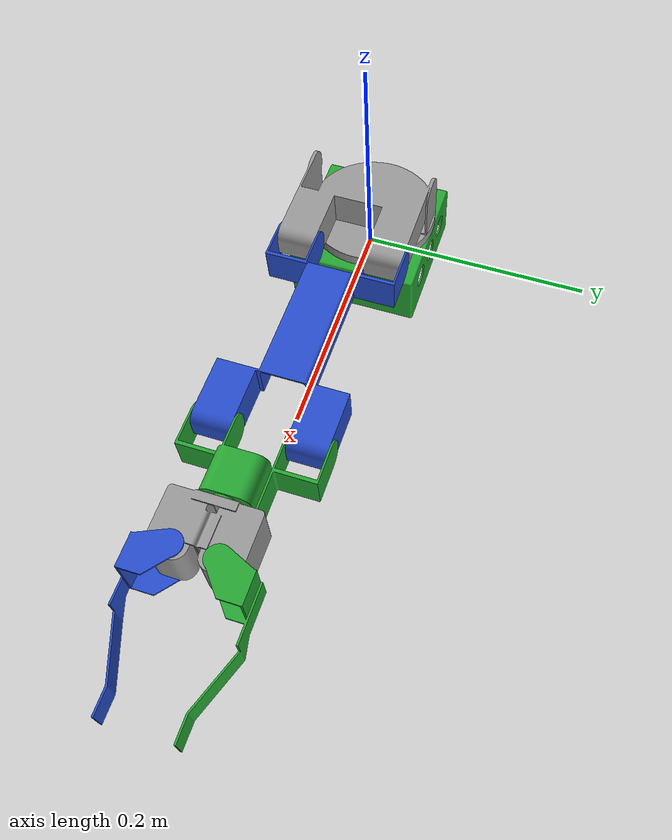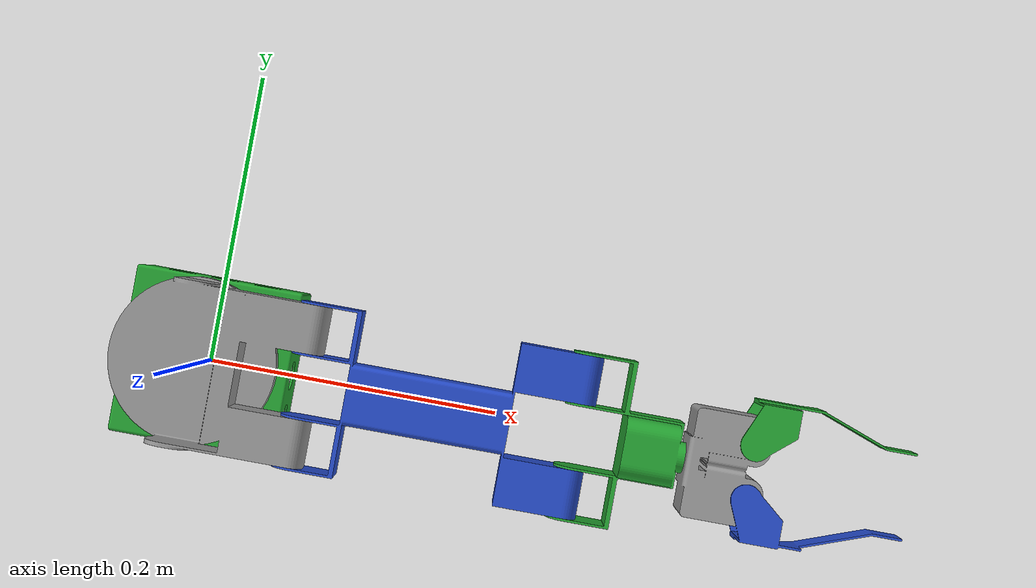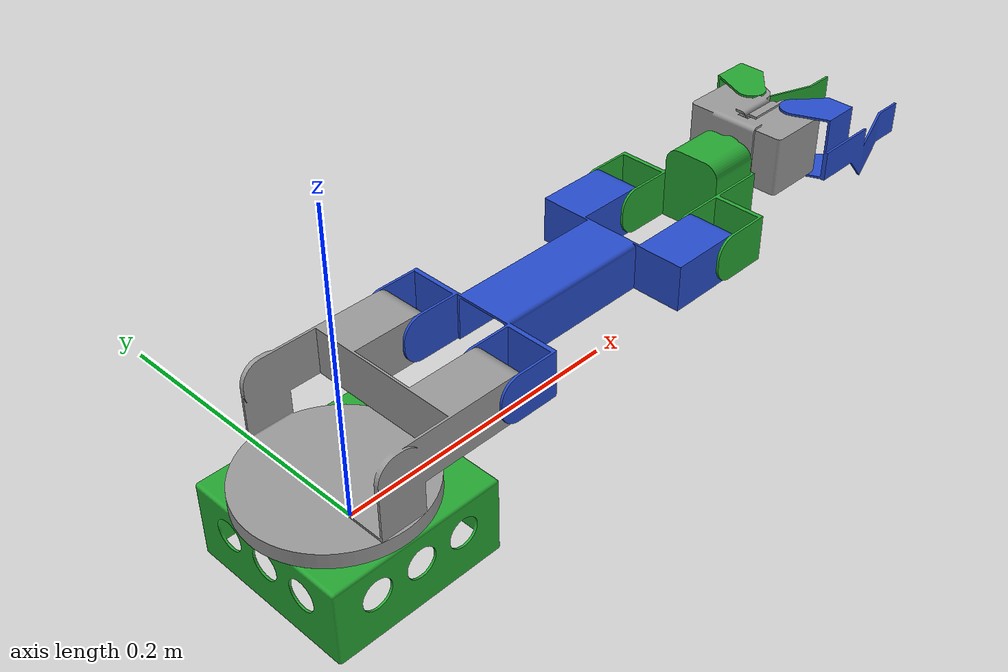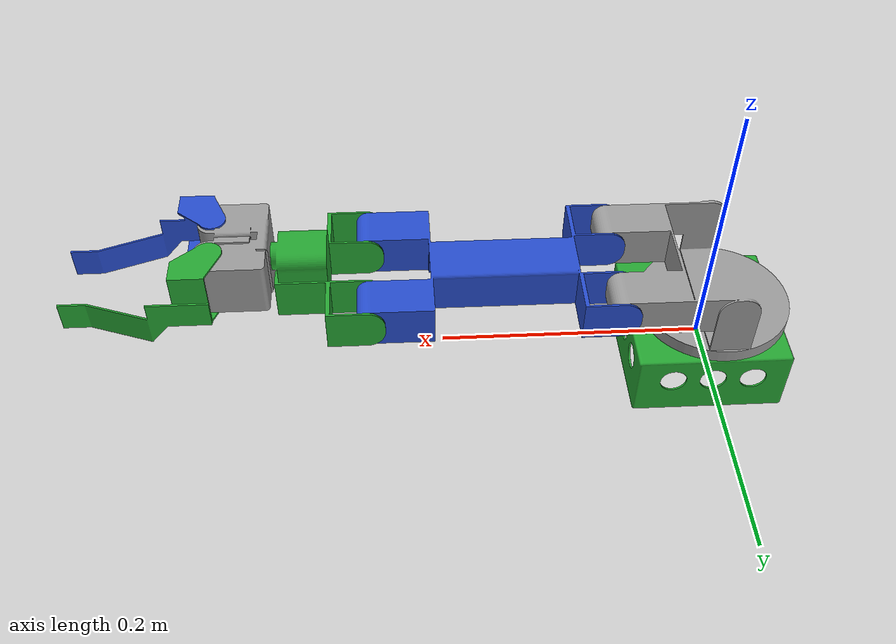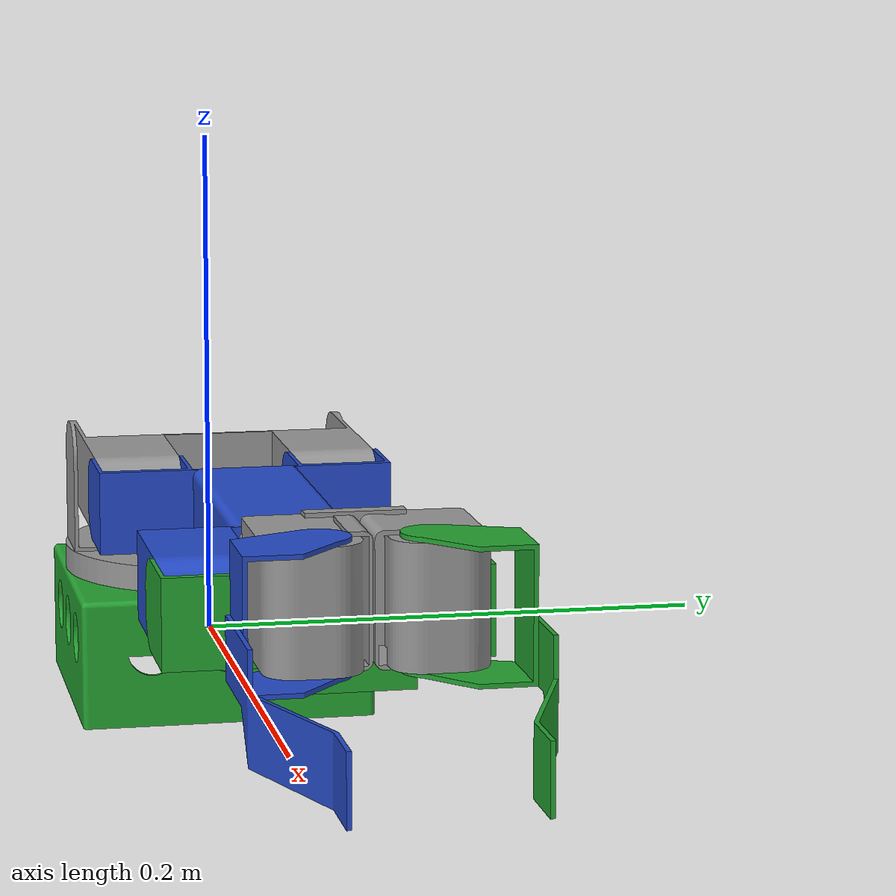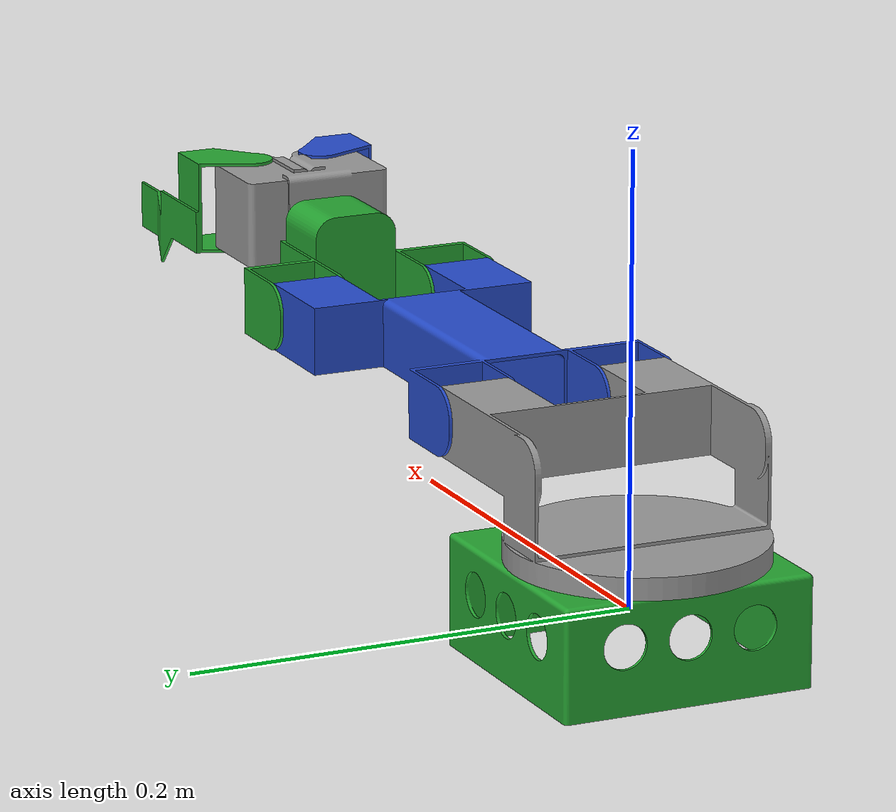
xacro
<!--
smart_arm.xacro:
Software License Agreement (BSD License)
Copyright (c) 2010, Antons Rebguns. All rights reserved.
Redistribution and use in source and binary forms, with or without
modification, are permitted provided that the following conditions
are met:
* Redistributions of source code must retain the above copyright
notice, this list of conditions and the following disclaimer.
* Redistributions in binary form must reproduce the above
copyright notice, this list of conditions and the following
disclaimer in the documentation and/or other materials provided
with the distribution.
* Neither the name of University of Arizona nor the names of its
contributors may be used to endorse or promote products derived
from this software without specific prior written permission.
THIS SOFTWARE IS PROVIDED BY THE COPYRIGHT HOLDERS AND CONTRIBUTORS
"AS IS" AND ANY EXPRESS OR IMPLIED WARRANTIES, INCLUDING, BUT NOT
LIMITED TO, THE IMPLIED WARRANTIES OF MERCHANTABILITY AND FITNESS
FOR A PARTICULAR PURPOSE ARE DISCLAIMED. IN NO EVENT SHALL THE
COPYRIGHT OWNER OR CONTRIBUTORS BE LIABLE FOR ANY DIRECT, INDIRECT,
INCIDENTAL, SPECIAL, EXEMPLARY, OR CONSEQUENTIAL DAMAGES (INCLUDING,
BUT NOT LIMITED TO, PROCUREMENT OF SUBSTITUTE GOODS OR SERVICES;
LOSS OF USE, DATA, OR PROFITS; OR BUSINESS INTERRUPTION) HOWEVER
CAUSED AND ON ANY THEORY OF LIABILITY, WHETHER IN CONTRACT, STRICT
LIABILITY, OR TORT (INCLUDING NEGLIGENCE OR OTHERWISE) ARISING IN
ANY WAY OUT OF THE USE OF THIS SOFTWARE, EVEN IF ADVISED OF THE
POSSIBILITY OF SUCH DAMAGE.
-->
<?xml version="1.0"?>

<robot name="smart_arm"  xmlns:xacro="http://www.ros.org/wiki/xacro">

  <!-- Included URDF Files -->
  <xacro:include filename="$(find smart_arm_description)/urdf/smart_arm.xacro" />

  <!-- Used for fixing robot to Gazebo 'base_link' -->
  <link name="world"/>
  <smart_arm parent="world"> <!--decimated="_decimated"-->
    <origin xyz="0 0 0" rpy="0 0 0" />
  </smart_arm>
</robot>

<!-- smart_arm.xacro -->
<robot name="smart_arm" xmlns:xacro="http://www.ros.org/wiki/xacro">

  <xacro:include filename="$(find smart_arm_description)/urdf/materials.urdf.xacro" />

  <xacro:macro name="smart_arm" params="parent decimated:='' *origin">
    <!-- ****** JOINT DEFINITIONS ****** -->

    <!-- Arm's base joint -->
    <joint name="arm_base_joint" type="fixed">
      <xacro:insert_block name="origin" />
      <parent link="${parent}"/>
      <child link="arm_base_link"/>
    </joint>

    <!-- Shoulder pan joint -->
    <joint name="shoulder_pan_joint" type="revolute" >
      <origin xyz="-0.0075 0 0.025" rpy="0 0 0" />
      <parent link="arm_base_link" />
      <child link="arm_shoulder_pan_link"/>

      <axis xyz="0 0 1"/>
      <limit  lower="-1.22" upper="1.22" effort="300" velocity="1.17" />
      <safety_controller k_position="100" k_velocity="15.0" soft_lower_limit="${-1.22+0.1}" soft_upper_limit="${1.22-0.1}" />
      <dynamics damping="50" friction="1"/>
    </joint>

    <!-- Shoulder tilt joint -->
    <joint name="shoulder_pitch_joint" type="revolute">
      <origin xyz="${0.105 - 0.01 - 0.03085/2} 0 ${0.01 + 0.05 - 0.031/2}" rpy="0 0 0" />
      <parent link="arm_shoulder_pan_link"/>
      <child link="arm_shoulder_pitch_link" />

      <axis xyz="0 -1 0"/>
      <limit  lower="-1.04719755" upper="1.972222" effort="300" velocity="1.17" />
      <safety_controller k_position="100" k_velocity="15.0" soft_lower_limit="${-1.04719755+0.1}" soft_upper_limit="${1.972222-0.1}" />
      <dynamics damping="50" friction="1"/>
    </joint>

    <!-- Elbow tilt joint -->
    <joint name="elbow_flex_joint" type="revolute">
      <origin xyz="${0.04 - 0.01 + 0.0015 + 0.105 + 0.055 - 0.01} 0 0" rpy="0 0 0" />
      <parent link="arm_shoulder_pitch_link"/>
      <child link="arm_elbow_flex_link" />

      <axis xyz="0 -1 0"/>
      <!-- From -113 to 108 degrees -->
      <limit  lower="-1.972222" upper="1.8849556" effort="300" velocity="1.17" />
      <dynamics damping="50" friction="1"/>
      <safety_controller k_position="100" k_velocity="15.0" soft_lower_limit="${-1.972222+0.1}" soft_upper_limit="${1.8849556-0.1}" />
    </joint>

    <!-- Wrist rotate joint -->
    <joint name="wrist_roll_joint" type="revolute">
      <origin xyz="${0.08 - 0.01} 0 ${0.05 - 0.0115 - 0.0155}" rpy="0 0 0" />
      <parent link="arm_elbow_flex_link"/>
      <child link="arm_wrist_roll_link" />

      <axis xyz="-1 0 0"/>
      <!-- From -150 to 150 degrees -->
      <limit  lower="-2.6179939" upper="2.6179939" effort="300" velocity="1.17" />
      <dynamics damping="50" friction="1"/>
      <safety_controller k_position="100" k_velocity="15.0" soft_lower_limit="${-2.6179939+0.1}" soft_upper_limit="${2.6179939-0.1}" />
    </joint>

    <!-- Gripper right finger joint -->
    <joint name="right_finger_joint" type="revolute">
      <origin xyz="${0.0015 + 0.05 - 0.01} ${-0.035/2} 0" rpy="0 0 0" />
      <parent link="arm_wrist_roll_link"/>
      <child link="arm_right_finger_link" />

      <axis xyz="0 0 1"/>
      <!-- From 14 to -45 degrees -->
      <limit  lower="-0.838576116" upper="0.245436912" effort="300" velocity="1.17" />
      <dynamics damping="50" friction="1"/>
      <safety_controller k_position="100" k_velocity="15.0" soft_lower_limit="${-0.838576116+0.1}" soft_upper_limit="${0.245436912-0.1}" />
    </joint>

    <!-- Gripper left finger joint -->
    <joint name="left_finger_joint" type="revolute">
      <origin xyz="${0.0015 + 0.05 - 0.01} ${0.035/2} 0" rpy="0 0 0" />
      <parent link="arm_wrist_roll_link"/>
      <child link="arm_left_finger_link" />

      <axis xyz="0 0 1"/>
      <!-- From -14 to 45 degrees -->
      <limit  lower="-0.240323643" upper="0.843689385" effort="300" velocity="1.17" />
      <dynamics damping="50" friction="1"/>
      <safety_controller k_position="100" k_velocity="15.0" soft_lower_limit="${-0.240323643+0.1}" soft_upper_limit="${0.843689385-0.1}" />
    </joint>

    <!-- ****** LINK DEFINITIONS ****** -->

    <link name="arm_base_link">
      <inertial>
        <mass value="0.125" />
        <origin xyz="0 0 0.00893364" rpy="0 0 0" />
        <inertia ixx="1.0" ixy="0.0" ixz="0.0"
             iyy="1.0" iyz="0.0"
             izz="1.0" />
      </inertial>

      <visual>
        <origin xyz="0.0 0.0 0.0" rpy="0 0 0" />
        <geometry>
          <mesh filename="package://smart_arm_description/meshes/collada/arm_base${decimated}.dae"/>
        </geometry>
        <material name="Green" />
      </visual>

      <collision>
        <origin xyz="0.0 0.0 0.0" rpy="0 0 0" />
        <geometry>
          <mesh filename="package://smart_arm_description/meshes/collada/arm_base${decimated}.dae"/>
        </geometry>
      </collision>
    </link>

    <link name="arm_shoulder_pan_link">
      <inertial>
        <mass value="0.405" />
        <origin xyz="0.02988871 0 0.02056699" rpy="0 0 0" />
        <inertia ixx="1.0" ixy="0.0" ixz="0.0"
             iyy="1.0" iyz="0.0"
             izz="1.0" />
      </inertial>

      <visual>
        <origin xyz="0.0 0.0 0.005" rpy="0 0 0" />
        <geometry>
          <mesh filename="package://smart_arm_description/meshes/collada/arm_shoulder_pan${decimated}.dae"/>
        </geometry>
        <material name="Grey" />
      </visual>

      <collision>
        <origin xyz="0.0 0.0 0.0" rpy="0 0 0" />
        <geometry>
          <mesh filename="package://smart_arm_description/meshes/collada/arm_shoulder_pan${decimated}.dae"/>
        </geometry>
      </collision>
    </link>

    <link name="arm_shoulder_pitch_link">
      <inertial>
        <mass value="0.18" />
        <origin xyz="0.13999458 0 0.00064711" rpy="0 0 0" />
        <inertia ixx="1.0" ixy="0.0" ixz="0.0"
             iyy="1.0" iyz="0.0"
             izz="1.0" />
      </inertial>

      <visual>
        <origin xyz="0.0 0.0 0.0" rpy="0 0 0" />
        <geometry>
          <mesh filename="package://smart_arm_description/meshes/collada/arm_shoulder_pitch${decimated}.dae"/>
        </geometry>
        <material name="Blue" />
      </visual>

      <collision>
        <origin xyz="0.0 0.0 0.0" rpy="0 0 0" />
        <geometry>
          <mesh filename="package://smart_arm_description/meshes/collada/arm_shoulder_pitch${decimated}.dae"/>
        </geometry>
      </collision>
    </link>

    <link name="arm_elbow_flex_link">
      <inertial>
        <mass value="0.12" />
        <origin xyz="0.04463361 0 0.00720194" rpy="0 0 0" />
        <inertia ixx="1.0" ixy="0.0" ixz="0.0"
             iyy="1.0" iyz="0.0"
             izz="1.0" />
      </inertial>

      <visual>
        <origin xyz="0.0 0.0 0.0" rpy="0 0 0" />
        <geometry>
          <mesh filename="package://smart_arm_description/meshes/collada/arm_elbow_flex${decimated}.dae"/>
        </geometry>
        <material name="Green" />
      </visual>

      <collision>
        <origin xyz="0.0 0.0 0.0" rpy="0 0 0" />
        <geometry>
          <mesh filename="package://smart_arm_description/meshes/collada/arm_elbow_flex${decimated}.dae"/>
        </geometry>
      </collision>
    </link>

    <link name="arm_wrist_roll_link">
      <inertial>
        <mass value="0.13" />
        <origin xyz="0.02539960 0 0" rpy="0 0 0" />
        <inertia ixx="1.0" ixy="0.0" ixz="0.0"
             iyy="1.0" iyz="0.0"
             izz="1.0" />
      </inertial>

      <visual>
        <origin xyz="0.0 0.0 0.0" rpy="0 0 0" />
        <geometry>
          <mesh filename="package://smart_arm_description/meshes/collada/arm_wrist_roll${decimated}.dae"/>
        </geometry>
        <material name="Grey" />
      </visual>

      <collision>
        <origin xyz="0.0 0.0 0.0" rpy="0 0 0" />
        <geometry>
          <mesh filename="package://smart_arm_description/meshes/collada/arm_wrist_roll${decimated}.dae"/>
        </geometry>
      </collision>
    </link>

    <link name="arm_right_finger_link">
      <inertial>
        <mass value="0.0225" />
        <origin xyz="0.03058625 -0.01804371 -0.00941599" rpy="0 0 0" />
        <inertia ixx="1.0" ixy="0.0" ixz="0.0"
             iyy="1.0" iyz="0.0"
             izz="1.0" />
      </inertial>

      <visual>
        <origin xyz="0.0 0.0 0.0" rpy="0 0 0" />
        <geometry>
          <mesh filename="package://smart_arm_description/meshes/collada/arm_right_finger${decimated}.dae"/>
        </geometry>
        <material name="Blue" />
      </visual>

      <collision>
        <origin xyz="0.0 0.0 0.0" rpy="0 0 0" />
        <geometry>
          <mesh filename="package://smart_arm_description/meshes/collada/arm_right_finger${decimated}.dae"/>
        </geometry>
      </collision>
    </link>

    <link name="arm_left_finger_link">
      <inertial>
        <mass value="0.0225" />
        <origin xyz="0.03058625 0.01804371 -0.00941599" rpy="0 0 0" />
        <inertia ixx="1.0" ixy="0.0" ixz="0.0"
             iyy="1.0" iyz="0.0"
             izz="1.0" />
      </inertial>

      <visual>
        <origin xyz="0.0 0.0 0.0" rpy="0 0 0" />
        <geometry>
          <mesh filename="package://smart_arm_description/meshes/collada/arm_left_finger${decimated}.dae"/>
        </geometry>
        <material name="Green" />
      </visual>

      <collision>
        <origin xyz="0.0 0.0 0.0" rpy="0 0 0" />
        <geometry>
          <mesh filename="package://smart_arm_description/meshes/collada/arm_left_finger${decimated}.dae"/>
        </geometry>
      </collision>
    </link>

    <!-- ****** TRANSMISSION DEFINITIONS ****** -->
    <gazebo>
      <plugin name="gazebo_ros_control" filename="libgazebo_ros_control.so">
        <robotNamespace>/smart_arm</robotNamespace>
        <robotSimType>gazebo_ros_control/DefaultRobotHWSim</robotSimType>
      </plugin>
    </gazebo>

    <!-- from universal_robot -->

    <!-- based on rrbot -->
    <transmission name="shoulder_pan_trans">
      <type>transmission_interface/SimpleTransmission</type>
      <joint name="shoulder_pan_joint">
        <hardwareInterface>EffortJointInterface</hardwareInterface>
      </joint>
      <actuator name="shoulder_pan_motor">
        <hardwareInterface>EffortJointInterface</hardwareInterface>
        <mechanicalReduction>1</mechanicalReduction>
      </actuator>
    </transmission>

    <transmission name="shoulder_pitch_trans">
      <type>transmission_interface/SimpleTransmission</type>
      <joint name="shoulder_pitch_joint">
        <hardwareInterface>EffortJointInterface</hardwareInterface>
      </joint>
      <actuator name="shoulder_pitch_motor">
        <hardwareInterface>EffortJointInterface</hardwareInterface>
        <mechanicalReduction>1</mechanicalReduction>
      </actuator>
    </transmission>

    <transmission name="elbow_flex_trans">
      <type>transmission_interface/SimpleTransmission</type>
      <joint name="elbow_flex_joint">
        <hardwareInterface>EffortJointInterface</hardwareInterface>
      </joint>
      <actuator name="elbow_flex_motor">
        <hardwareInterface>EffortJointInterface</hardwareInterface>
        <mechanicalReduction>1</mechanicalReduction>
      </actuator>
    </transmission>

    <transmission name="wrist_roll_trans">
      <type>transmission_interface/SimpleTransmission</type>
      <joint name="wrist_roll_joint">
        <hardwareInterface>EffortJointInterface</hardwareInterface>
      </joint>
      <actuator name="wrist_roll_motor">
        <hardwareInterface>EffortJointInterface</hardwareInterface>
        <mechanicalReduction>1</mechanicalReduction>
      </actuator>
    </transmission>

    <transmission name="right_finger_trans">
      <type>transmission_interface/SimpleTransmission</type>
      <joint name="right_finger_joint">
        <hardwareInterface>EffortJointInterface</hardwareInterface>
      </joint>
      <actuator name="right_finger_motor">
        <hardwareInterface>EffortJointInterface</hardwareInterface>
        <mechanicalReduction>1</mechanicalReduction>
      </actuator>
    </transmission>

    <transmission name="left_finger_trans">
      <type>transmission_interface/SimpleTransmission</type>
      <joint name="left_finger_joint">
        <hardwareInterface>EffortJointInterface</hardwareInterface>
      </joint>
      <actuator name="left_finger_motor">
        <hardwareInterface>EffortJointInterface</hardwareInterface>
        <mechanicalReduction>1</mechanicalReduction>
      </actuator>
    </transmission>

    <!-- ****** MATERIAL DEFINITIONS ****** -->

    <gazebo reference="arm_base_link">
      <material>SmartArm/GunMetalBrushedAluminum</material>
    </gazebo>

    <gazebo reference="arm_shoulder_pan_link">
      <material>SmartArm/GunMetalBrushedAluminum</material>
    </gazebo>

    <gazebo reference="arm_shoulder_pitch_link">
      <material>SmartArm/GunMetalBrushedAluminum</material>
    </gazebo>

    <gazebo reference="arm_elbow_flex_link">
      <material>SmartArm/GunMetalBrushedAluminum</material>
    </gazebo>

    <gazebo reference="arm_wrist_roll_link">
      <material>SmartArm/GunMetalBrushedAluminum</material>
    </gazebo>

    <gazebo reference="arm_right_finger_link">
      <material>SmartArm/GunMetalBrushedAluminum</material>
      <mu1 value="500.0" />
      <mu2 value="500.0" />
      <kp value="1000000.0" />
      <kd value="1.0" />
    </gazebo>

    <gazebo reference="arm_left_finger_link">
      <material>SmartArm/GunMetalBrushedAluminum</material>
      <mu1 value="500.0" />
      <mu2 value="500.0" />
      <kp value="1000000.0" />
      <kd value="1.0" />
    </gazebo>

    <gazebo reference="shoulder_pan_joint">
      <stopKd value="1.0" />
      <stopKp value="1000000.0" />
      <fudgeFactor value="0.5" />
    </gazebo>

    <gazebo reference="shoulder_pitch_joint">
      <stopKd value="1.0" />
      <stopKp value="1000000.0" />
      <fudgeFactor value="0.5" />
    </gazebo>

    <gazebo reference="elbow_flex_joint">
      <stopKd value="1.0" />
      <stopKp value="1000000.0" />
      <fudgeFactor value="0.5" />
    </gazebo>

    <gazebo reference="wrist_roll_joint">
      <stopKd value="1.0" />
      <stopKp value="1000000.0" />
      <fudgeFactor value="0.5" />
    </gazebo>

    <gazebo reference="right_finger_joint">
      <stopKd value="1.0" />
      <stopKp value="1000000.0" />
      <fudgeFactor value="1.0" />
    </gazebo>

    <gazebo reference="left_finger_joint">
      <stopKd value="1.0" />
      <stopKp value="1000000.0" />
      <fudgeFactor value="1.0" />
    </gazebo>
  </xacro:macro>
</robot>
